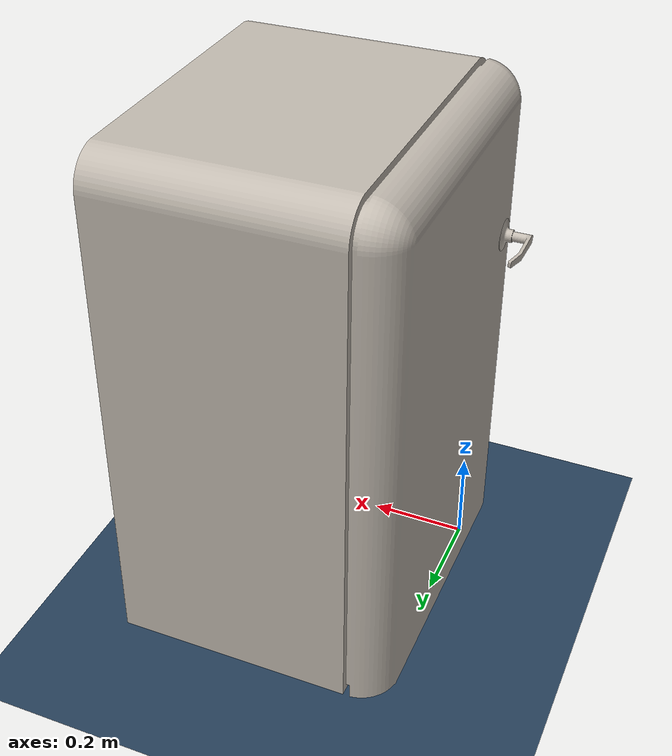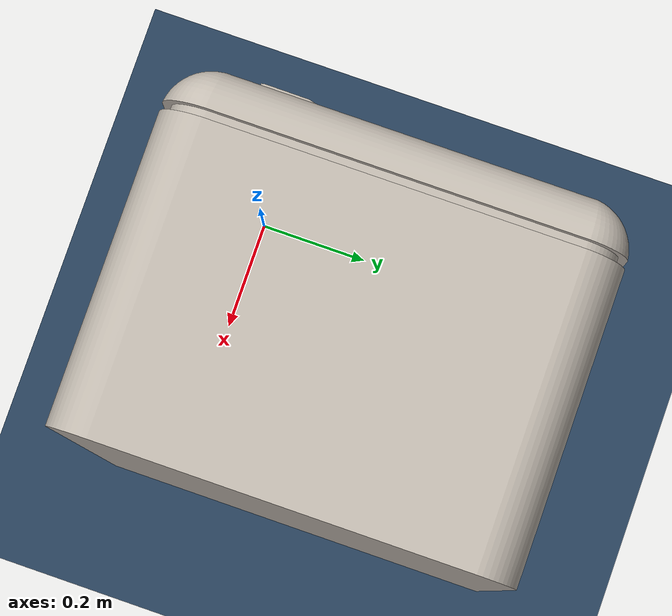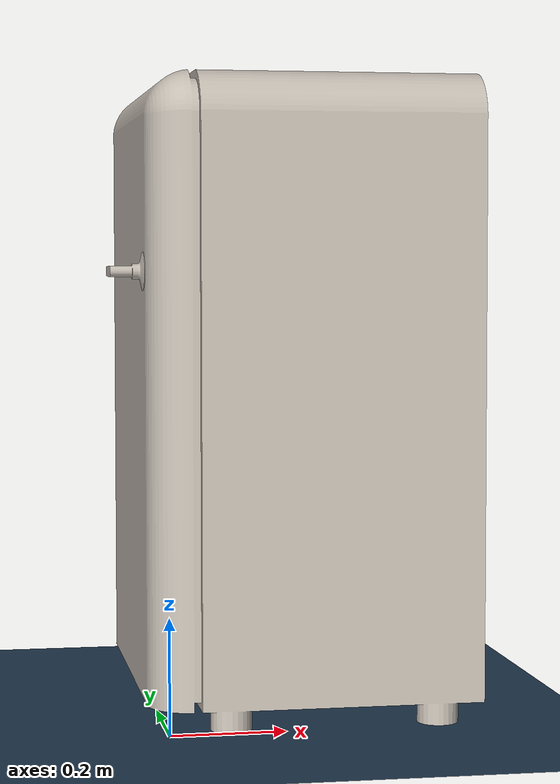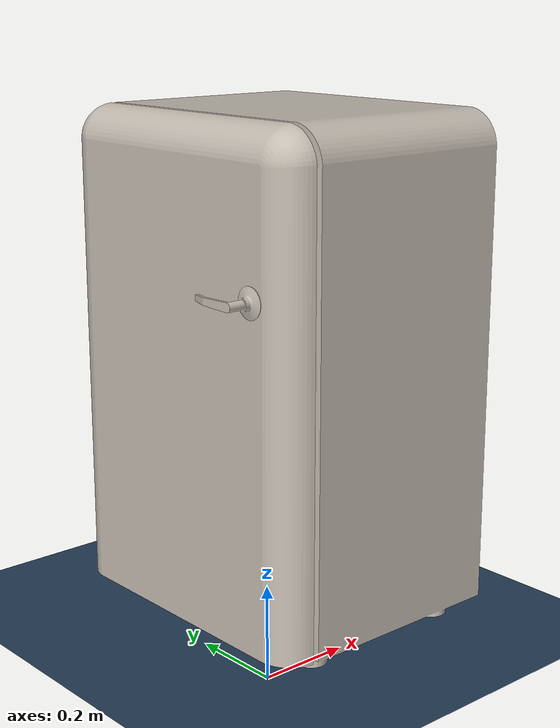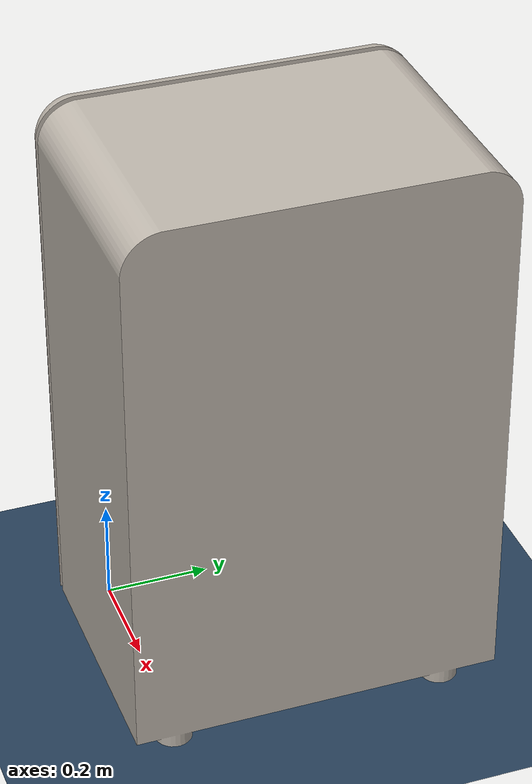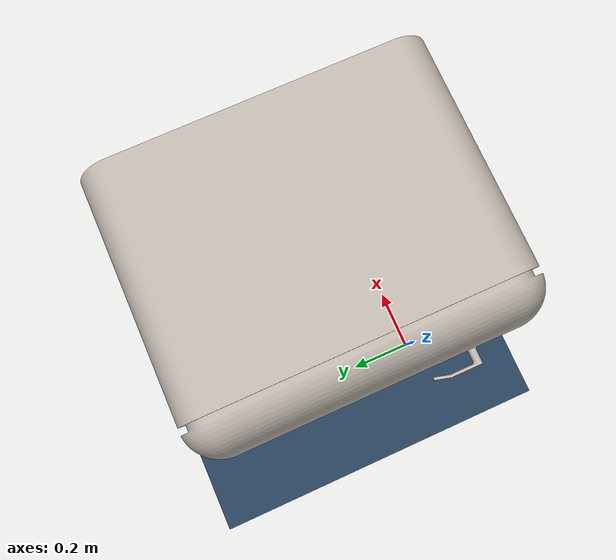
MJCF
<mujoco model="fridge">
  <compiler angle="radian" meshdir="texture_stl/"/>

  <visual>
    <headlight diffuse="0.6 0.6 0.6" ambient="0.3 0.3 0.3" specular="0 0 0"/>
    <rgba haze="0.15 0.25 0.35 1"/>
    <global azimuth="-20" elevation="-20" ellipsoidinertia="true"/>
  </visual>

  <asset>
    <texture type="skybox" builtin="gradient" rgb1="0.3 0.5 0.7" rgb2="0 0 0" width="512" height="3072"/>
    <texture type="2d" name="groundplane" builtin="checker" mark="edge" rgb1="0.2 0.3 0.4" rgb2="0.1 0.2 0.3"
      markrgb="0.8 0.8 0.8" width="300" height="300"/>
    <texture name="fridge_texture" type="cube" file="texture_stl/texture_0.png"/>
    <texture name="handle_texture" type="2d" file="texture_stl/texture_0.png"/>
    <material name="fridge_material" texture="fridge_texture"/>
    <material name="handle_material" texture="handle_texture"/>
    <material name="groundplane" texture="groundplane" texuniform="true" texrepeat="5 5" reflectance="0.2"/>

    <mesh name="frame" file="frame.stl" scale="0.7 0.7 0.7"/>
    <mesh name="board" file="board.stl" scale="0.7 0.7 0.7"/>
    <mesh name="9960013" file="9960013.stl" scale="1 1 1"/>
  </asset>

  <worldbody>
    <light pos="0 0 1.5" dir="0 0 -1" directional="true"/>
    <geom name="floor" size="0 0 0.05" type="plane" material="groundplane"/>
    <body name="fridge" euler="0 1.57 0" pos="0 0 0.74">
      <geom name="frame" pos="0 0 0" quat="0.5 0.5 -0.5 -0.5" type="mesh" mesh="frame" material="fridge_material" conaffinity="0" contype="0"/>
      <body name="link_1" pos="0 0.5950132334630519 0" quat="0.5 0.5 -0.5 -0.5">
        <inertial pos="0 0 0" mass="10.0" diaginertia="5.0 5.0 5.0"/>
        <joint name="joint_1" pos="0 0 0" axis="0 0 -1" range="0 1.50796"/>
        <geom name="board" pos="0.5950132334630519 0 0" quat="1 0 0 0" type="mesh" mesh="board" material="fridge_material"/>
        <body name="link_2" pos="0.5950132334630519 -0.038  0.041878916448044735">
          <joint name="joint_2" pos="0 0 0" axis="0 1 0" range="-1.50796 1.50796" stiffness="5.0" damping="0.1"/>
          <geom name="handle" type="mesh" mesh="9960013" material="handle_material"/>
        </body>
      </body>
    </body>
  </worldbody>
</mujoco>
